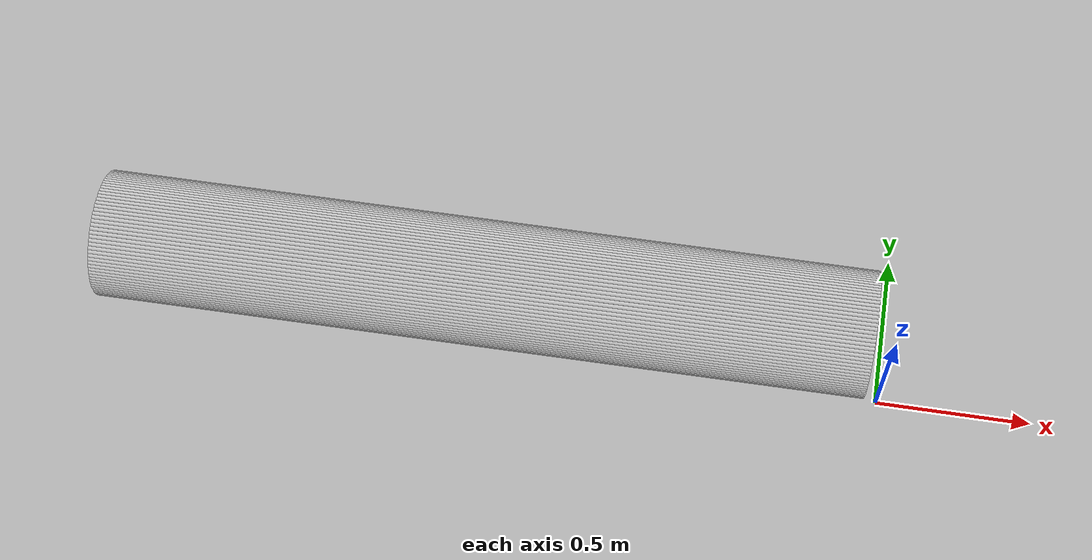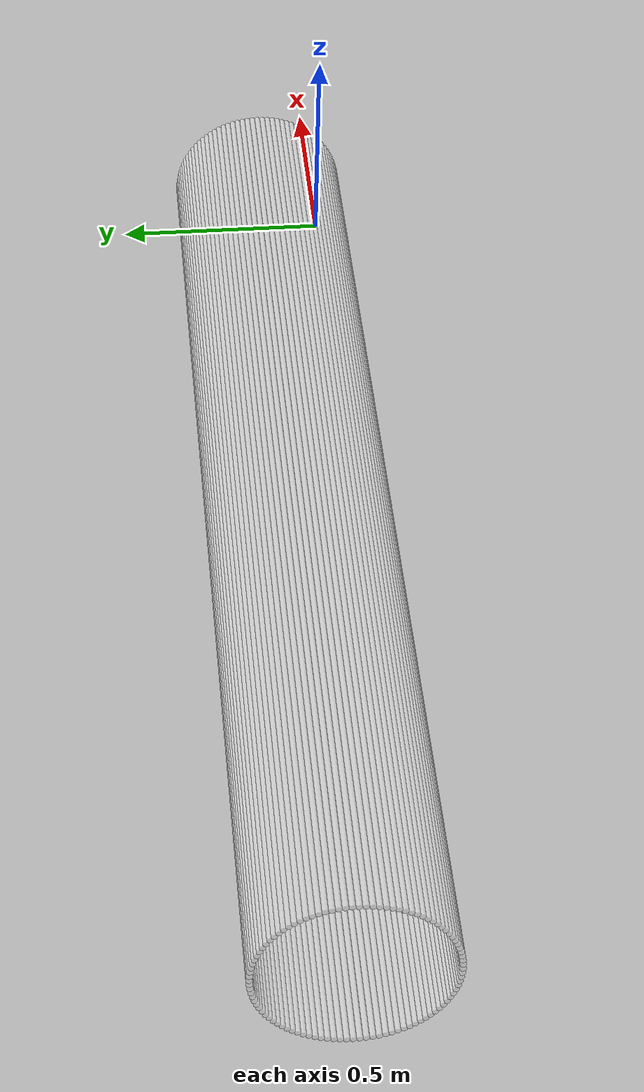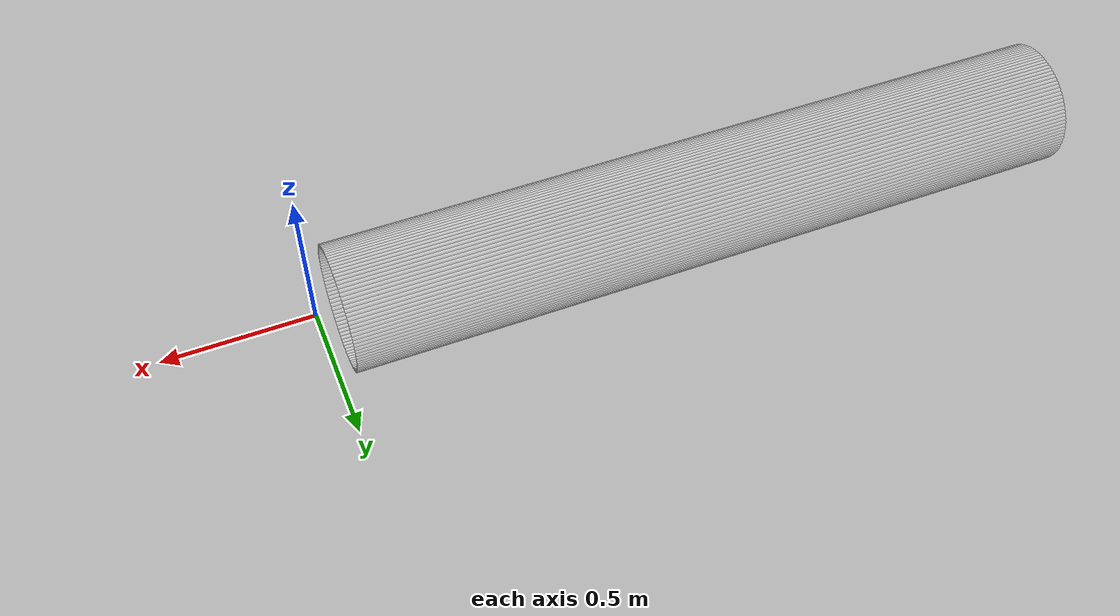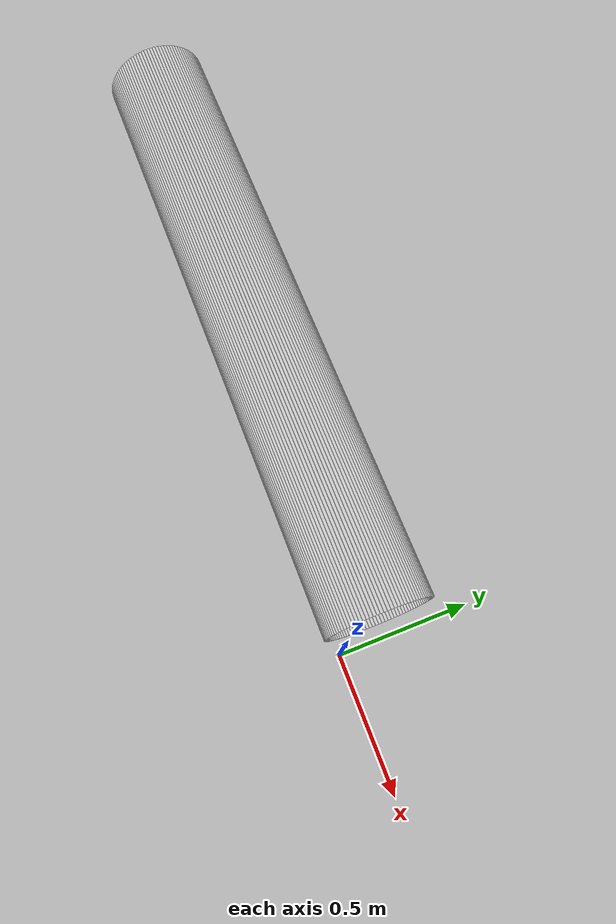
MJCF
<?xml version="1.0" encoding="utf-8"?>
<mujoco>
   <worldbody>
   <body pos="-0.05 0.16 -0.02" euler="0 0 -90">
      <geom euler=" 0 10 0 " fromto="0.2 0 0.2 0.2 -2.5 0.2" rgba="1 1 1 0.35"
            size="0.0062822"
            type="cylinder"/>
      <geom euler=" 0 20 0 " fromto="0.19961 0 0.21256 0.19961 -2.5 0.21256"
            rgba="1 1 1 0.35"
            size="0.0062822"
            type="cylinder"/>
      <geom euler=" 0 30 0 " fromto="0.19842 0 0.22507 0.19842 -2.5 0.22507"
            rgba="1 1 1 0.35"
            size="0.0062822"
            type="cylinder"/>
      <geom euler=" 0 40 0 " fromto="0.19646 0 0.23748 0.19646 -2.5 0.23748"
            rgba="1 1 1 0.35"
            size="0.0062822"
            type="cylinder"/>
      <geom euler=" 0 50 0 " fromto="0.19372 0 0.24974 0.19372 -2.5 0.24974"
            rgba="1 1 1 0.35"
            size="0.0062822"
            type="cylinder"/>
      <geom euler=" 0 60 0 " fromto="0.19021 0 0.2618 0.19021 -2.5 0.2618"
            rgba="1 1 1 0.35"
            size="0.0062822"
            type="cylinder"/>
      <geom euler=" 0 70 0 " fromto="0.18596 0 0.27362 0.18596 -2.5 0.27362"
            rgba="1 1 1 0.35"
            size="0.0062822"
            type="cylinder"/>
      <geom euler=" 0 80 0 " fromto="0.18097 0 0.28516 0.18097 -2.5 0.28516"
            rgba="1 1 1 0.35"
            size="0.0062822"
            type="cylinder"/>
      <geom euler=" 0 90 0 " fromto="0.17526 0 0.29635 0.17526 -2.5 0.29635"
            rgba="1 1 1 0.35"
            size="0.0062822"
            type="cylinder"/>
      <geom euler=" 0 100 0 " fromto="0.16887 0 0.30717 0.16887 -2.5 0.30717"
            rgba="1 1 1 0.35"
            size="0.0062822"
            type="cylinder"/>
      <geom euler=" 0 110 0 " fromto="0.1618 0 0.31756 0.1618 -2.5 0.31756"
            rgba="1 1 1 0.35"
            size="0.0062822"
            type="cylinder"/>
      <geom euler=" 0 120 0 " fromto="0.1541 0 0.32748 0.1541 -2.5 0.32748"
            rgba="1 1 1 0.35"
            size="0.0062822"
            type="cylinder"/>
      <geom euler=" 0 130 0 " fromto="0.14579 0 0.33691 0.14579 -2.5 0.33691"
            rgba="1 1 1 0.35"
            size="0.0062822"
            type="cylinder"/>
      <geom euler=" 0 140 0 " fromto="0.13691 0 0.34579 0.13691 -2.5 0.34579"
            rgba="1 1 1 0.35"
            size="0.0062822"
            type="cylinder"/>
      <geom euler=" 0 150 0 " fromto="0.12748 0 0.3541 0.12748 -2.5 0.3541"
            rgba="1 1 1 0.35"
            size="0.0062822"
            type="cylinder"/>
      <geom euler=" 0 160 0 " fromto="0.11756 0 0.3618 0.11756 -2.5 0.3618"
            rgba="1 1 1 0.35"
            size="0.0062822"
            type="cylinder"/>
      <geom euler=" 0 170 0 " fromto="0.10717 0 0.36887 0.10717 -2.5 0.36887"
            rgba="1 1 1 0.35"
            size="0.0062822"
            type="cylinder"/>
      <geom euler=" 0 180 0 " fromto="0.096351 0 0.37526 0.096351 -2.5 0.37526"
            rgba="1 1 1 0.35"
            size="0.0062822"
            type="cylinder"/>
      <geom euler=" 0 190 0 " fromto="0.085156 0 0.38097 0.085156 -2.5 0.38097"
            rgba="1 1 1 0.35"
            size="0.0062822"
            type="cylinder"/>
      <geom euler=" 0 200 0 " fromto="0.073625 0 0.38596 0.073625 -2.5 0.38596"
            rgba="1 1 1 0.35"
            size="0.0062822"
            type="cylinder"/>
      <geom euler=" 0 210 0 " fromto="0.061803 0 0.39021 0.061803 -2.5 0.39021"
            rgba="1 1 1 0.35"
            size="0.0062822"
            type="cylinder"/>
      <geom euler=" 0 220 0 " fromto="0.049738 0 0.39372 0.049738 -2.5 0.39372"
            rgba="1 1 1 0.35"
            size="0.0062822"
            type="cylinder"/>
      <geom euler=" 0 230 0 " fromto="0.037476 0 0.39646 0.037476 -2.5 0.39646"
            rgba="1 1 1 0.35"
            size="0.0062822"
            type="cylinder"/>
      <geom euler=" 0 240 0 " fromto="0.025067 0 0.39842 0.025067 -2.5 0.39842"
            rgba="1 1 1 0.35"
            size="0.0062822"
            type="cylinder"/>
      <geom euler=" 0 250 0 " fromto="0.012558 0 0.39961 0.012558 -2.5 0.39961"
            rgba="1 1 1 0.35"
            size="0.0062822"
            type="cylinder"/>
      <geom euler=" 0 260 0 " fromto="1.2246e-17 0 0.4 1.2246e-17 -2.5 0.4"
            rgba="1 1 1 0.35"
            size="0.0062822"
            type="cylinder"/>
      <geom euler=" 0 270 0 " fromto="-0.012558 0 0.39961 -0.012558 -2.5 0.39961"
            rgba="1 1 1 0.35"
            size="0.0062822"
            type="cylinder"/>
      <geom euler=" 0 280 0 " fromto="-0.025067 0 0.39842 -0.025067 -2.5 0.39842"
            rgba="1 1 1 0.35"
            size="0.0062822"
            type="cylinder"/>
      <geom euler=" 0 290 0 " fromto="-0.037476 0 0.39646 -0.037476 -2.5 0.39646"
            rgba="1 1 1 0.35"
            size="0.0062822"
            type="cylinder"/>
      <geom euler=" 0 300 0 " fromto="-0.049738 0 0.39372 -0.049738 -2.5 0.39372"
            rgba="1 1 1 0.35"
            size="0.0062822"
            type="cylinder"/>
      <geom euler=" 0 310 0 " fromto="-0.061803 0 0.39021 -0.061803 -2.5 0.39021"
            rgba="1 1 1 0.35"
            size="0.0062822"
            type="cylinder"/>
      <geom euler=" 0 320 0 " fromto="-0.073625 0 0.38596 -0.073625 -2.5 0.38596"
            rgba="1 1 1 0.35"
            size="0.0062822"
            type="cylinder"/>
      <geom euler=" 0 330 0 " fromto="-0.085156 0 0.38097 -0.085156 -2.5 0.38097"
            rgba="1 1 1 0.35"
            size="0.0062822"
            type="cylinder"/>
      <geom euler=" 0 340 0 " fromto="-0.096351 0 0.37526 -0.096351 -2.5 0.37526"
            rgba="1 1 1 0.35"
            size="0.0062822"
            type="cylinder"/>
      <geom euler=" 0 350 0 " fromto="-0.10717 0 0.36887 -0.10717 -2.5 0.36887"
            rgba="1 1 1 0.35"
            size="0.0062822"
            type="cylinder"/>
      <geom euler=" 0 360 0 " fromto="-0.11756 0 0.3618 -0.11756 -2.5 0.3618"
            rgba="1 1 1 0.35"
            size="0.0062822"
            type="cylinder"/>
      <geom euler=" 0 370 0 " fromto="-0.12748 0 0.3541 -0.12748 -2.5 0.3541"
            rgba="1 1 1 0.35"
            size="0.0062822"
            type="cylinder"/>
      <geom euler=" 0 380 0 " fromto="-0.13691 0 0.34579 -0.13691 -2.5 0.34579"
            rgba="1 1 1 0.35"
            size="0.0062822"
            type="cylinder"/>
      <geom euler=" 0 390 0 " fromto="-0.14579 0 0.33691 -0.14579 -2.5 0.33691"
            rgba="1 1 1 0.35"
            size="0.0062822"
            type="cylinder"/>
      <geom euler=" 0 400 0 " fromto="-0.1541 0 0.32748 -0.1541 -2.5 0.32748"
            rgba="1 1 1 0.35"
            size="0.0062822"
            type="cylinder"/>
      <geom euler=" 0 410 0 " fromto="-0.1618 0 0.31756 -0.1618 -2.5 0.31756"
            rgba="1 1 1 0.35"
            size="0.0062822"
            type="cylinder"/>
      <geom euler=" 0 420 0 " fromto="-0.16887 0 0.30717 -0.16887 -2.5 0.30717"
            rgba="1 1 1 0.35"
            size="0.0062822"
            type="cylinder"/>
      <geom euler=" 0 430 0 " fromto="-0.17526 0 0.29635 -0.17526 -2.5 0.29635"
            rgba="1 1 1 0.35"
            size="0.0062822"
            type="cylinder"/>
      <geom euler=" 0 440 0 " fromto="-0.18097 0 0.28516 -0.18097 -2.5 0.28516"
            rgba="1 1 1 0.35"
            size="0.0062822"
            type="cylinder"/>
      <geom euler=" 0 450 0 " fromto="-0.18596 0 0.27362 -0.18596 -2.5 0.27362"
            rgba="1 1 1 0.35"
            size="0.0062822"
            type="cylinder"/>
      <geom euler=" 0 460 0 " fromto="-0.19021 0 0.2618 -0.19021 -2.5 0.2618"
            rgba="1 1 1 0.35"
            size="0.0062822"
            type="cylinder"/>
      <geom euler=" 0 470 0 " fromto="-0.19372 0 0.24974 -0.19372 -2.5 0.24974"
            rgba="1 1 1 0.35"
            size="0.0062822"
            type="cylinder"/>
      <geom euler=" 0 480 0 " fromto="-0.19646 0 0.23748 -0.19646 -2.5 0.23748"
            rgba="1 1 1 0.35"
            size="0.0062822"
            type="cylinder"/>
      <geom euler=" 0 490 0 " fromto="-0.19842 0 0.22507 -0.19842 -2.5 0.22507"
            rgba="1 1 1 0.35"
            size="0.0062822"
            type="cylinder"/>
      <geom euler=" 0 500 0 " fromto="-0.19961 0 0.21256 -0.19961 -2.5 0.21256"
            rgba="1 1 1 0.35"
            size="0.0062822"
            type="cylinder"/>
      <geom euler=" 0 510 0 " fromto="-0.2 0 0.2 -0.2 -2.5 0.2" rgba="1 1 1 0.35"
            size="0.0062822"
            type="cylinder"/>
      <geom euler=" 0 520 0 " fromto="-0.19961 0 0.18744 -0.19961 -2.5 0.18744"
            rgba="1 1 1 0.35"
            size="0.0062822"
            type="cylinder"/>
      <geom euler=" 0 530 0 " fromto="-0.19842 0 0.17493 -0.19842 -2.5 0.17493"
            rgba="1 1 1 0.35"
            size="0.0062822"
            type="cylinder"/>
      <geom euler=" 0 540 0 " fromto="-0.19646 0 0.16252 -0.19646 -2.5 0.16252"
            rgba="1 1 1 0.35"
            size="0.0062822"
            type="cylinder"/>
      <geom euler=" 0 550 0 " fromto="-0.19372 0 0.15026 -0.19372 -2.5 0.15026"
            rgba="1 1 1 0.35"
            size="0.0062822"
            type="cylinder"/>
      <geom euler=" 0 560 0 " fromto="-0.19021 0 0.1382 -0.19021 -2.5 0.1382"
            rgba="1 1 1 0.35"
            size="0.0062822"
            type="cylinder"/>
      <geom euler=" 0 570 0 " fromto="-0.18596 0 0.12638 -0.18596 -2.5 0.12638"
            rgba="1 1 1 0.35"
            size="0.0062822"
            type="cylinder"/>
      <geom euler=" 0 580 0 " fromto="-0.18097 0 0.11484 -0.18097 -2.5 0.11484"
            rgba="1 1 1 0.35"
            size="0.0062822"
            type="cylinder"/>
      <geom euler=" 0 590 0 " fromto="-0.17526 0 0.10365 -0.17526 -2.5 0.10365"
            rgba="1 1 1 0.35"
            size="0.0062822"
            type="cylinder"/>
      <geom euler=" 0 600 0 " fromto="-0.16887 0 0.092835 -0.16887 -2.5 0.092835"
            rgba="1 1 1 0.35"
            size="0.0062822"
            type="cylinder"/>
      <geom euler=" 0 610 0 " fromto="-0.1618 0 0.082443 -0.1618 -2.5 0.082443"
            rgba="1 1 1 0.35"
            size="0.0062822"
            type="cylinder"/>
      <geom euler=" 0 620 0 " fromto="-0.1541 0 0.072515 -0.1541 -2.5 0.072515"
            rgba="1 1 1 0.35"
            size="0.0062822"
            type="cylinder"/>
      <geom euler=" 0 630 0 " fromto="-0.14579 0 0.063091 -0.14579 -2.5 0.063091"
            rgba="1 1 1 0.35"
            size="0.0062822"
            type="cylinder"/>
      <geom euler=" 0 640 0 " fromto="-0.13691 0 0.054206 -0.13691 -2.5 0.054206"
            rgba="1 1 1 0.35"
            size="0.0062822"
            type="cylinder"/>
      <geom euler=" 0 650 0 " fromto="-0.12748 0 0.045897 -0.12748 -2.5 0.045897"
            rgba="1 1 1 0.35"
            size="0.0062822"
            type="cylinder"/>
      <geom euler=" 0 660 0 " fromto="-0.11756 0 0.038197 -0.11756 -2.5 0.038197"
            rgba="1 1 1 0.35"
            size="0.0062822"
            type="cylinder"/>
      <geom euler=" 0 670 0 " fromto="-0.10717 0 0.031134 -0.10717 -2.5 0.031134"
            rgba="1 1 1 0.35"
            size="0.0062822"
            type="cylinder"/>
      <geom euler=" 0 680 0 " fromto="-0.096351 0 0.024739 -0.096351 -2.5 0.024739"
            rgba="1 1 1 0.35"
            size="0.0062822"
            type="cylinder"/>
      <geom euler=" 0 690 0 " fromto="-0.085156 0 0.019035 -0.085156 -2.5 0.019035"
            rgba="1 1 1 0.35"
            size="0.0062822"
            type="cylinder"/>
      <geom euler=" 0 700 0 " fromto="-0.073625 0 0.014045 -0.073625 -2.5 0.014045"
            rgba="1 1 1 0.35"
            size="0.0062822"
            type="cylinder"/>
      <geom euler=" 0 710 0 " fromto="-0.061803 0 0.0097887 -0.061803 -2.5 0.0097887"
            rgba="1 1 1 0.35"
            size="0.0062822"
            type="cylinder"/>
      <geom euler=" 0 720 0 " fromto="-0.049738 0 0.0062834 -0.049738 -2.5 0.0062834"
            rgba="1 1 1 0.35"
            size="0.0062822"
            type="cylinder"/>
      <geom euler=" 0 730 0 " fromto="-0.037476 0 0.0035425 -0.037476 -2.5 0.0035425"
            rgba="1 1 1 0.35"
            size="0.0062822"
            type="cylinder"/>
      <geom euler=" 0 740 0 " fromto="-0.025067 0 0.0015771 -0.025067 -2.5 0.0015771"
            rgba="1 1 1 0.35"
            size="0.0062822"
            type="cylinder"/>
      <geom euler=" 0 750 0 " fromto="-0.012558 0 0.00039465 -0.012558 -2.5 0.00039465"
            rgba="1 1 1 0.35"
            size="0.0062822"
            type="cylinder"/>
      <geom euler=" 0 760 0 " fromto="-3.6739e-17 0 0 -3.6739e-17 -2.5 0" rgba="1 1 1 0.35"
            size="0.0062822"
            type="cylinder"/>
      <geom euler=" 0 770 0 " fromto="0.012558 0 0.00039465 0.012558 -2.5 0.00039465"
            rgba="1 1 1 0.35"
            size="0.0062822"
            type="cylinder"/>
      <geom euler=" 0 780 0 " fromto="0.025067 0 0.0015771 0.025067 -2.5 0.0015771"
            rgba="1 1 1 0.35"
            size="0.0062822"
            type="cylinder"/>
      <geom euler=" 0 790 0 " fromto="0.037476 0 0.0035425 0.037476 -2.5 0.0035425"
            rgba="1 1 1 0.35"
            size="0.0062822"
            type="cylinder"/>
      <geom euler=" 0 800 0 " fromto="0.049738 0 0.0062834 0.049738 -2.5 0.0062834"
            rgba="1 1 1 0.35"
            size="0.0062822"
            type="cylinder"/>
      <geom euler=" 0 810 0 " fromto="0.061803 0 0.0097887 0.061803 -2.5 0.0097887"
            rgba="1 1 1 0.35"
            size="0.0062822"
            type="cylinder"/>
      <geom euler=" 0 820 0 " fromto="0.073625 0 0.014045 0.073625 -2.5 0.014045"
            rgba="1 1 1 0.35"
            size="0.0062822"
            type="cylinder"/>
      <geom euler=" 0 830 0 " fromto="0.085156 0 0.019035 0.085156 -2.5 0.019035"
            rgba="1 1 1 0.35"
            size="0.0062822"
            type="cylinder"/>
      <geom euler=" 0 840 0 " fromto="0.096351 0 0.024739 0.096351 -2.5 0.024739"
            rgba="1 1 1 0.35"
            size="0.0062822"
            type="cylinder"/>
      <geom euler=" 0 850 0 " fromto="0.10717 0 0.031134 0.10717 -2.5 0.031134"
            rgba="1 1 1 0.35"
            size="0.0062822"
            type="cylinder"/>
      <geom euler=" 0 860 0 " fromto="0.11756 0 0.038197 0.11756 -2.5 0.038197"
            rgba="1 1 1 0.35"
            size="0.0062822"
            type="cylinder"/>
      <geom euler=" 0 870 0 " fromto="0.12748 0 0.045897 0.12748 -2.5 0.045897"
            rgba="1 1 1 0.35"
            size="0.0062822"
            type="cylinder"/>
      <geom euler=" 0 880 0 " fromto="0.13691 0 0.054206 0.13691 -2.5 0.054206"
            rgba="1 1 1 0.35"
            size="0.0062822"
            type="cylinder"/>
      <geom euler=" 0 890 0 " fromto="0.14579 0 0.063091 0.14579 -2.5 0.063091"
            rgba="1 1 1 0.35"
            size="0.0062822"
            type="cylinder"/>
      <geom euler=" 0 900 0 " fromto="0.1541 0 0.072515 0.1541 -2.5 0.072515"
            rgba="1 1 1 0.35"
            size="0.0062822"
            type="cylinder"/>
      <geom euler=" 0 910 0 " fromto="0.1618 0 0.082443 0.1618 -2.5 0.082443"
            rgba="1 1 1 0.35"
            size="0.0062822"
            type="cylinder"/>
      <geom euler=" 0 920 0 " fromto="0.16887 0 0.092835 0.16887 -2.5 0.092835"
            rgba="1 1 1 0.35"
            size="0.0062822"
            type="cylinder"/>
      <geom euler=" 0 930 0 " fromto="0.17526 0 0.10365 0.17526 -2.5 0.10365"
            rgba="1 1 1 0.35"
            size="0.0062822"
            type="cylinder"/>
      <geom euler=" 0 940 0 " fromto="0.18097 0 0.11484 0.18097 -2.5 0.11484"
            rgba="1 1 1 0.35"
            size="0.0062822"
            type="cylinder"/>
      <geom euler=" 0 950 0 " fromto="0.18596 0 0.12638 0.18596 -2.5 0.12638"
            rgba="1 1 1 0.35"
            size="0.0062822"
            type="cylinder"/>
      <geom euler=" 0 960 0 " fromto="0.19021 0 0.1382 0.19021 -2.5 0.1382"
            rgba="1 1 1 0.35"
            size="0.0062822"
            type="cylinder"/>
      <geom euler=" 0 970 0 " fromto="0.19372 0 0.15026 0.19372 -2.5 0.15026"
            rgba="1 1 1 0.35"
            size="0.0062822"
            type="cylinder"/>
      <geom euler=" 0 980 0 " fromto="0.19646 0 0.16252 0.19646 -2.5 0.16252"
            rgba="1 1 1 0.35"
            size="0.0062822"
            type="cylinder"/>
      <geom euler=" 0 990 0 " fromto="0.19842 0 0.17493 0.19842 -2.5 0.17493"
            rgba="1 1 1 0.35"
            size="0.0062822"
            type="cylinder"/>
      <geom euler=" 0 1000 0 " fromto="0.19961 0 0.18744 0.19961 -2.5 0.18744"
            rgba="1 1 1 0.35"
            size="0.0062822"
            type="cylinder"/>
   </body>
   </worldbody>
</mujoco>
